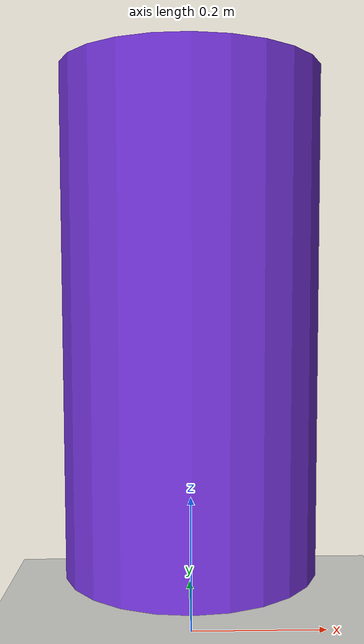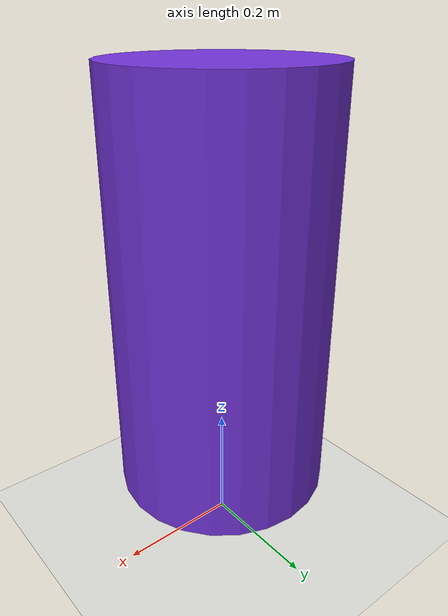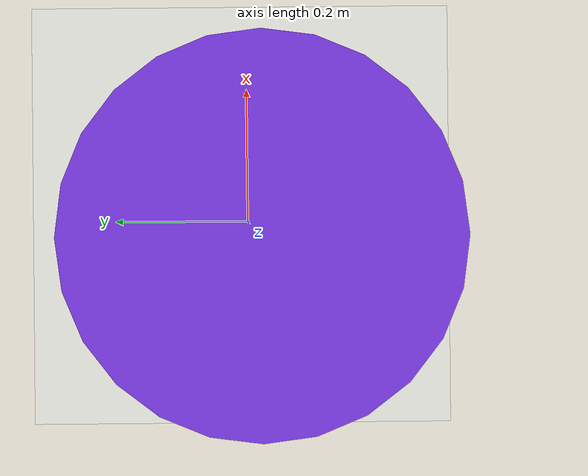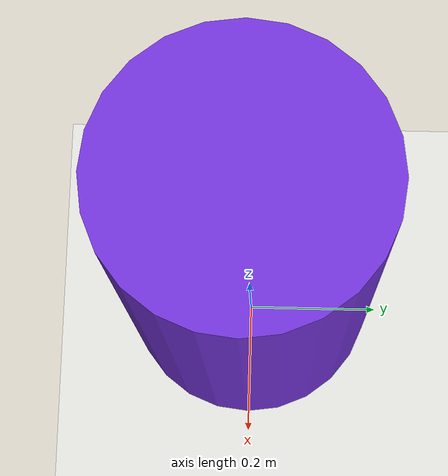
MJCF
<mujoco model="spin">
  <option timestep="0.04" gravity="0 0 -9.81"/>
  <visual><global offwidth="320" offheight="240"/></visual>
  <worldbody>
    <light pos="0 -4 5"/>
    <camera name="track" pos="2.5 -5 3" xyaxes="1 0 0 0 0.52 0.85"/>
    <geom name="floor" type="plane" size="3 3 0.1" rgba="0.88 0.88 0.86 1" friction="0.5 0.02 0.02"/>
    <body name="top" pos="0 0 0.45">
      <freejoint name="top_free"/>
      <geom name="top_geom" type="cylinder" size="0.18 0.35" mass="1" rgba="0.45 0.2 0.85 1"/>
    </body>
  </worldbody>
</mujoco>
